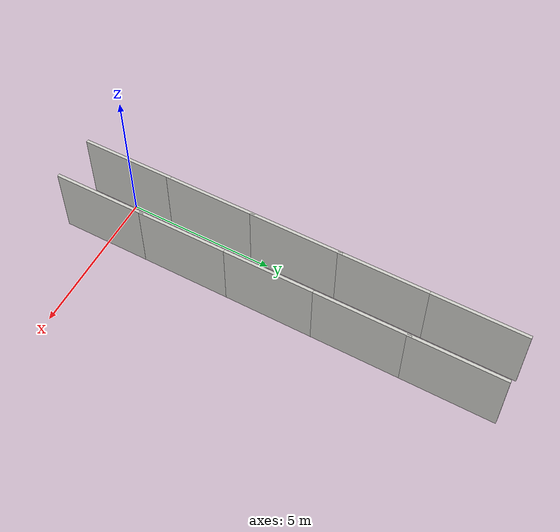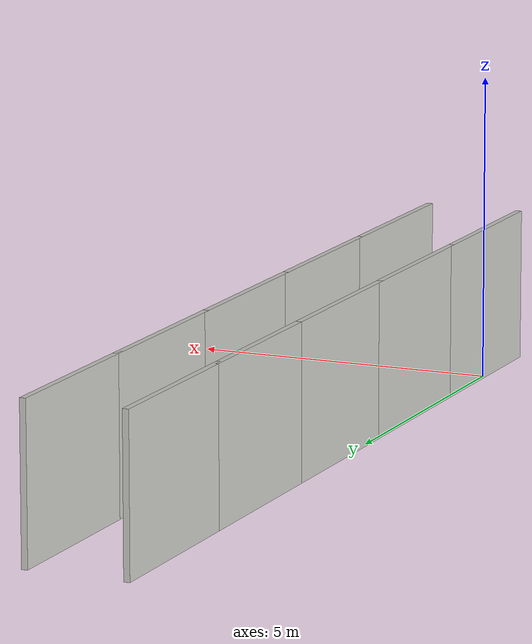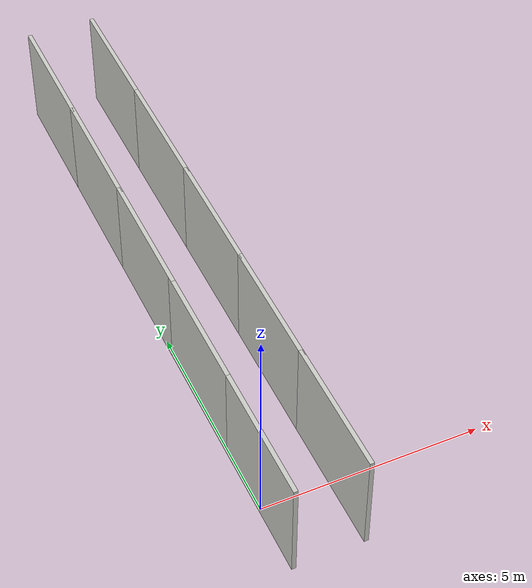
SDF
<?xml version="1.0" ?>
<sdf version="1.5">
  <model name="hansuwon_wall">

    <include>
      <name>w1</name>
      <pose>0 0 0 0 0 1.5708</pose>
      <uri>model://wall_unit_3m</uri>
    </include>
    <include>
      <name>w2</name>
      <pose>0 3 0 0 0 1.5708</pose>
      <uri>model://wall_unit_3m</uri>
    </include>
    <include>
      <name>w3</name>
      <pose>0 6 0 0 0 1.5708</pose>
      <uri>model://wall_unit_3m</uri>
    </include>
    <include>
      <name>w4</name>
      <pose>0 9 0 0 0 1.5708</pose>
      <uri>model://wall_unit_3m</uri>
    </include>
    <include>
      <name>w5</name>
      <pose>0 12 0 0 0 1.5708</pose>
      <uri>model://wall_unit_3m</uri>
    </include>

    <include>
      <name>w10</name>
      <pose>1.6 0 0 0 0 1.5708</pose>
      <uri>model://wall_unit_3m</uri>
    </include>
    <include>
      <name>w11</name>
      <pose>1.6 3 0 0 0 1.5708</pose>
      <uri>model://wall_unit_3m</uri>
    </include>
    <include>
      <name>w12</name>
      <pose>1.6 6 0 0 0 1.5708</pose>
      <uri>model://wall_unit_3m</uri>
    </include>
    <include>
      <name>w13</name>
      <pose>1.6 9 0 0 0 1.5708</pose>
      <uri>model://wall_unit_3m</uri>
    </include>
    <include>
      <name>w14</name>
      <pose>1.6 12 0 0 0 1.5708</pose>
      <uri>model://wall_unit_3m</uri>
    </include>

  </model>
</sdf>

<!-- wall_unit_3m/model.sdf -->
<sdf version='1.6'>
  <model name='wall_unit_3m'>
    <pose frame=''>0 0 0 0 -0 0</pose>
    <link name='Wall_45'>
      <collision name='Wall_45_Collision'>
        <geometry>
          <box>
            <size>3.15 0.1 2.5</size>
          </box>
        </geometry>
        <pose frame=''>0 0 1.25 0 -0 0</pose>
      </collision>
      <visual name='Wall_45_Visual'>
        <pose frame=''>0 0 1.25 0 -0 0</pose>
        <geometry>
          <box>
            <size>3.15 0.1 2.5</size>
          </box>
        </geometry>
        <material>
          <script>
            <uri>file://media/materials/scripts/gazebo.material</uri>
            <name>Gazebo/CeilingTiled</name>
          </script>
          <ambient>1 1 1 1</ambient>
        </material>
        <meta>
          <layer>0</layer>
        </meta>
      </visual>
      <pose frame=''>0 0 0 0 -0 0</pose>
    </link>
    <static>1</static>
  </model>
</sdf>
